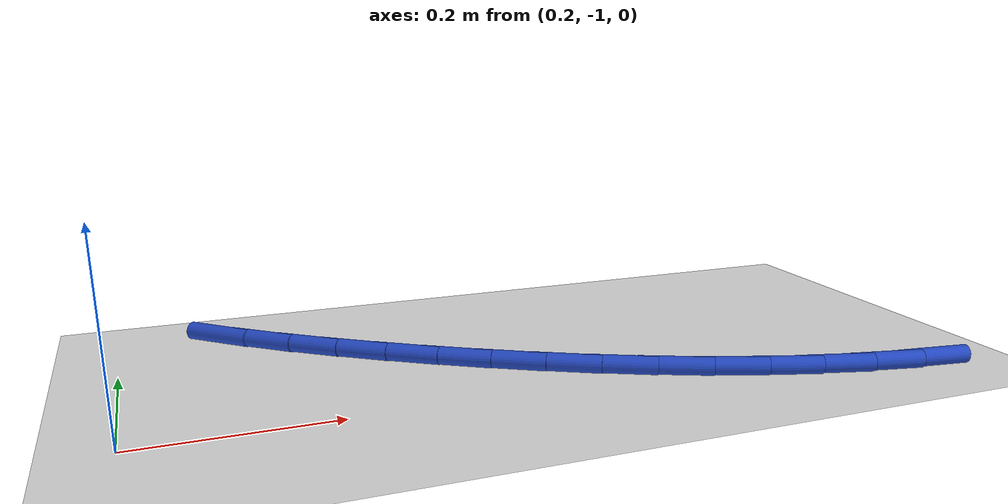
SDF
<sdf version="1.6">
 <world name="default">
  <model name="ground_plane">
   <static>1</static>
   <link name="link">
    <collision name="collision">
     <geometry><plane><normal>0 0 1</normal><size>100 100</size></plane></geometry>
     <surface><friction><ode><mu>100</mu><mu2>50</mu2></ode></friction></surface>
    </collision>
    <visual name="visual">
     <cast_shadows>0</cast_shadows>
     <geometry><plane><normal>0 0 1</normal><size>100 100</size></plane></geometry>
     <material>
      <script><uri>file://media/materials/scripts/gazebo.material</uri><name>Gazebo/WhiteGlow</name></script>
     </material>
    </visual>
   </link>
  </model>
  <model name="line">
   <link name="link_92">
    <pose>1.0136245167950213 -1.08283054199312 0.01 0 1.57 -0.14159174170718566</pose>
    <collision name="collision">
     <geometry><cylinder><radius>0.01</radius><length>0.08</length></cylinder></geometry>
    </collision>
    <visual name="visual">
     <material>
      <script><name>Gazebo/Blue</name><uri>file://media/materials/scripts/gazebo.material</uri></script>
     </material>
     <geometry><cylinder><radius>0.01</radius><length>0.08</length></cylinder></geometry>
    </visual>
   </link>
   <link name="link_93">
    <pose>0.9584057358822671 -1.0749593470374197 0.01 0 1.57 -0.21490119582851916</pose>
    <collision name="collision">
     <geometry><cylinder><radius>0.01</radius><length>0.08</length></cylinder></geometry>
    </collision>
    <visual name="visual">
     <material>
      <script><name>Gazebo/Blue</name><uri>file://media/materials/scripts/gazebo.material</uri></script>
     </material>
     <geometry><cylinder><radius>0.01</radius><length>0.08</length></cylinder></geometry>
    </visual>
   </link>
   <link name="link_94">
    <pose>0.9036155773447471 -1.0630002060209947 0.01 0 1.57 -0.2819378591810916</pose>
    <collision name="collision">
     <geometry><cylinder><radius>0.01</radius><length>0.08</length></cylinder></geometry>
    </collision>
    <visual name="visual">
     <material>
      <script><name>Gazebo/Blue</name><uri>file://media/materials/scripts/gazebo.material</uri></script>
     </material>
     <geometry><cylinder><radius>0.01</radius><length>0.08</length></cylinder></geometry>
    </visual>
   </link>
   <link name="link_95">
    <pose>0.8493294768858584 -1.047276041915638 0.01 0 1.57 -0.3427817220686924</pose>
    <collision name="collision">
     <geometry><cylinder><radius>0.01</radius><length>0.08</length></cylinder></geometry>
    </collision>
    <visual name="visual">
     <material>
      <script><name>Gazebo/Blue</name><uri>file://media/materials/scripts/gazebo.material</uri></script>
     </material>
     <geometry><cylinder><radius>0.01</radius><length>0.08</length></cylinder></geometry>
    </visual>
   </link>
   <link name="link_96">
    <pose>0.7956228702089976 -1.028109777693141 0.01 0 1.57 -0.3976878674054361</pose>
    <collision name="collision">
     <geometry><cylinder><radius>0.01</radius><length>0.08</length></cylinder></geometry>
    </collision>
    <visual name="visual">
     <material>
      <script><name>Gazebo/Blue</name><uri>file://media/materials/scripts/gazebo.material</uri></script>
     </material>
     <geometry><cylinder><radius>0.01</radius><length>0.08</length></cylinder></geometry>
    </visual>
   </link>
   <link name="link_97">
    <pose>0.7425711930175636 -1.005824336325297 0.01 0 1.57 -0.4470144756037157</pose>
    <collision name="collision">
     <geometry><cylinder><radius>0.01</radius><length>0.08</length></cylinder></geometry>
    </collision>
    <visual name="visual">
     <material>
      <script><name>Gazebo/Blue</name><uri>file://media/materials/scripts/gazebo.material</uri></script>
     </material>
     <geometry><cylinder><radius>0.01</radius><length>0.08</length></cylinder></geometry>
    </visual>
   </link>
   <link name="link_98">
    <pose>0.6902498810149539 -0.9807426407838991 0.01 0 1.57 -0.4911668958079264</pose>
    <collision name="collision">
     <geometry><cylinder><radius>0.01</radius><length>0.08</length></cylinder></geometry>
    </collision>
    <visual name="visual">
     <material>
      <script><name>Gazebo/Blue</name><uri>file://media/materials/scripts/gazebo.material</uri></script>
     </material>
     <geometry><cylinder><radius>0.01</radius><length>0.08</length></cylinder></geometry>
    </visual>
   </link>
   <link name="link_99">
    <pose>0.6387343699045658 -0.9531876140407392 0.01 0 1.57 -0.5305577977640205</pose>
    <collision name="collision">
     <geometry><cylinder><radius>0.01</radius><length>0.08</length></cylinder></geometry>
    </collision>
    <visual name="visual">
     <material>
      <script><name>Gazebo/Blue</name><uri>file://media/materials/scripts/gazebo.material</uri></script>
     </material>
     <geometry><cylinder><radius>0.01</radius><length>0.08</length></cylinder></geometry>
    </visual>
   </link>
   <link name="link_100">
    <pose>0.5881000953897964 -0.92348217906761 0.01 0 1.57 -0.565580741404714</pose>
    <collision name="collision">
     <geometry><cylinder><radius>0.01</radius><length>0.08</length></cylinder></geometry>
    </collision>
    <visual name="visual">
     <material>
      <script><name>Gazebo/Blue</name><uri>file://media/materials/scripts/gazebo.material</uri></script>
     </material>
     <geometry><cylinder><radius>0.01</radius><length>0.08</length></cylinder></geometry>
    </visual>
   </link>
   <link name="link_101">
    <pose>0.5384224931740444 -0.8919492588363039 0.01 0 1.57 -0.5966050144394447</pose>
    <collision name="collision">
     <geometry><cylinder><radius>0.01</radius><length>0.08</length></cylinder></geometry>
    </collision>
    <visual name="visual">
     <material>
      <script><name>Gazebo/Blue</name><uri>file://media/materials/scripts/gazebo.material</uri></script>
     </material>
     <geometry><cylinder><radius>0.01</radius><length>0.08</length></cylinder></geometry>
    </visual>
   </link>
   <link name="link_102">
    <pose>0.48977724360884334 -0.858911139385852 0.01 0 1.57 -0.6260019381236477</pose>
    <collision name="collision">
     <geometry><cylinder><radius>0.01</radius><length>0.08</length></cylinder></geometry>
    </collision>
    <visual name="visual">
     <material>
      <script><name>Gazebo/Blue</name><uri>file://media/materials/scripts/gazebo.material</uri></script>
     </material>
     <geometry><cylinder><radius>0.01</radius><length>0.08</length></cylinder></geometry>
    </visual>
   </link>
   <link name="link_103">
    <pose>0.4422847603702183 -0.8245736451285278 0.01 0 1.57 -0.658458132425072</pose>
    <collision name="collision">
     <geometry><cylinder><radius>0.01</radius><length>0.08</length></cylinder></geometry>
    </collision>
    <visual name="visual">
     <material>
      <script><name>Gazebo/Blue</name><uri>file://media/materials/scripts/gazebo.material</uri></script>
     </material>
     <geometry><cylinder><radius>0.01</radius><length>0.08</length></cylinder></geometry>
    </visual>
   </link>
   <link name="link_104">
    <pose>0.3961619691478765 -0.7888913348655027 0.01 0 1.57 -0.6947683118530799</pose>
    <collision name="collision">
     <geometry><cylinder><radius>0.01</radius><length>0.08</length></cylinder></geometry>
    </collision>
    <visual name="visual">
     <material>
      <script><name>Gazebo/Blue</name><uri>file://media/materials/scripts/gazebo.material</uri></script>
     </material>
     <geometry><cylinder><radius>0.01</radius><length>0.08</length></cylinder></geometry>
    </visual>
   </link>
   <link name="link_105">
    <pose>0.35163835863169235 -0.7517860600717462 0.01 0 1.57 -0.7351516061704773</pose>
    <collision name="collision">
     <geometry><cylinder><radius>0.01</radius><length>0.08</length></cylinder></geometry>
    </collision>
    <visual name="visual">
     <material>
      <script><name>Gazebo/Blue</name><uri>file://media/materials/scripts/gazebo.material</uri></script>
     </material>
     <geometry><cylinder><radius>0.01</radius><length>0.08</length></cylinder></geometry>
    </visual>
   </link>
   <link name="link_106">
    <pose>0.3089434175115392 -0.7131796722222267 0.01 0 1.57 -0.7798164343521623</pose>
    <collision name="collision">
     <geometry><cylinder><radius>0.01</radius><length>0.08</length></cylinder></geometry>
    </collision>
    <visual name="visual">
     <material>
      <script><name>Gazebo/Blue</name><uri>file://media/materials/scripts/gazebo.material</uri></script>
     </material>
     <geometry><cylinder><radius>0.01</radius><length>0.08</length></cylinder></geometry>
    </visual>
   </link>
  </model>
 </world>
</sdf>
